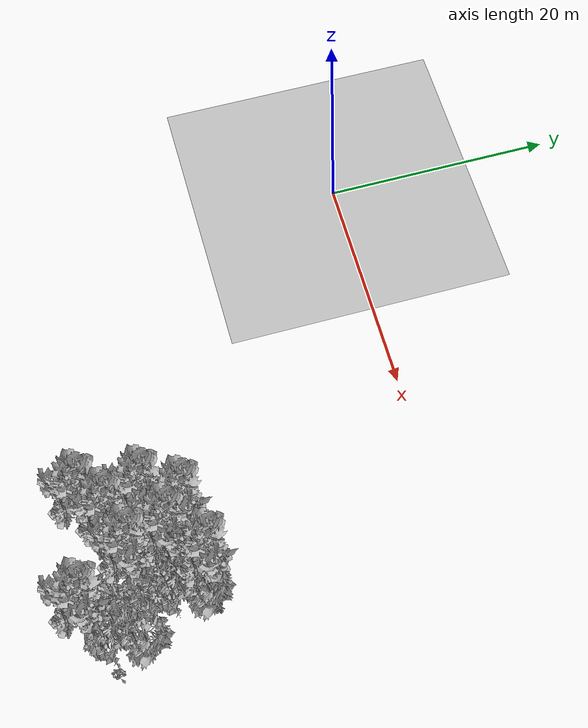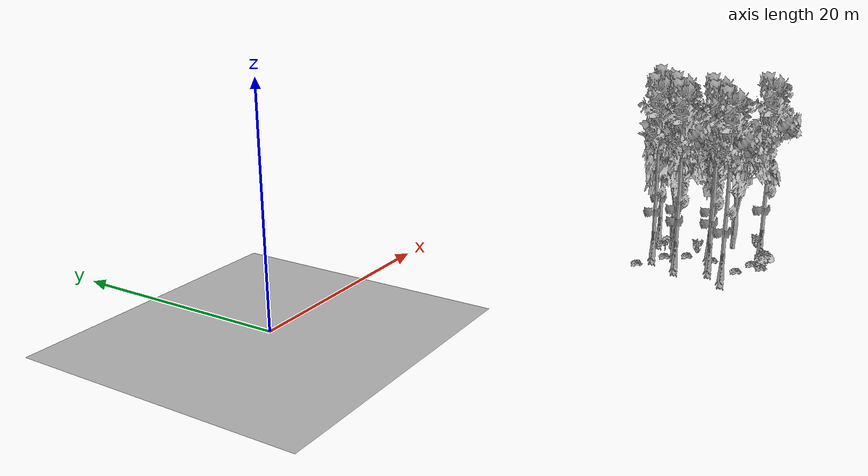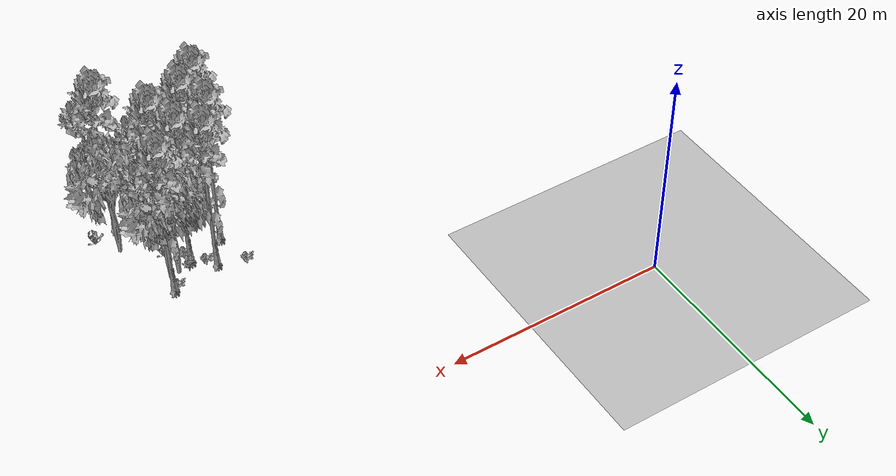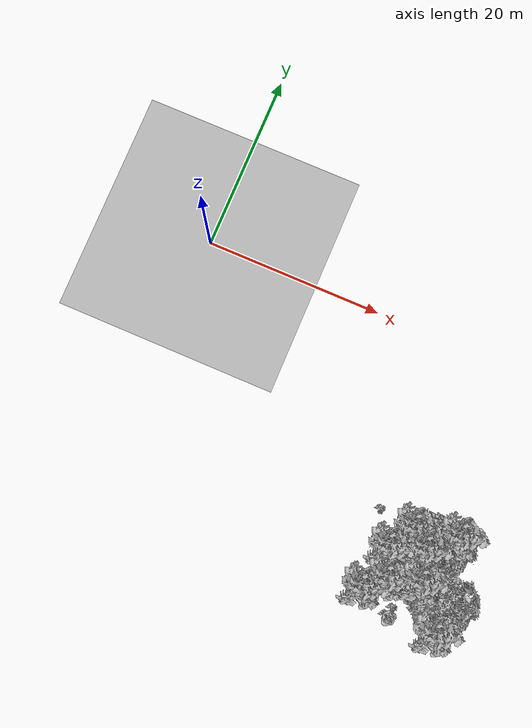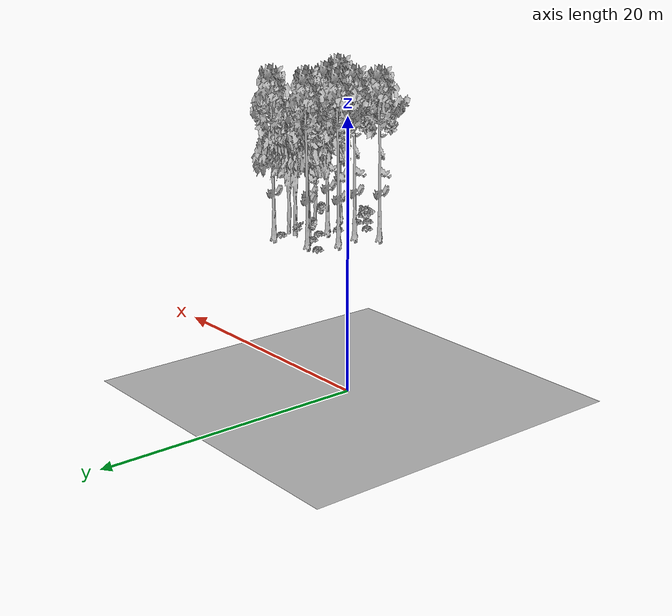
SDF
<sdf version="1.7">
 <world name="default">
  <model name="ground_plane">
   <static>1</static>
   <link name="link">
    <collision name="collision">
     <pose>-50 0 0 0 -0 0</pose>
     <geometry><plane><normal>0 0 1</normal><size>80 80</size></plane></geometry>
     <surface><contact><ode><min_depth>0.01</min_depth><max_vel>0</max_vel></ode></contact></surface>
    </collision>
    <visual name="grass">
     <cast_shadows>0</cast_shadows>
     <geometry>
      <mesh>
       <scale>0.46714285714285714 0.46714285714285714 0.1</scale>
       <uri>file://grass_plane/meshes/grass_plane.dae</uri>
      </mesh>
     </geometry>
    </visual>
   </link>
  </model>
  <model name="Tree 13">
   <static>1</static>
   <pose>33.340444704431576 -24.69356420575668 0 1.57079 -0 0</pose>
   <link name="link">
    <collision name="collision">
     <geometry><mesh><scale>3.5 5 3.5</scale><uri>model://tree_9/meshes/tree_9.obj</uri></mesh></geometry>
    </collision>
    <visual name="visual">
     <geometry><mesh><scale>3.5 5 3.5</scale><uri>model://tree_9/meshes/tree_9.obj</uri></mesh></geometry>
    </visual>
   </link>
  </model>
  <model name="Tree 33">
   <static>1</static>
   <pose>34.66525819187517 -20.876958603733257 0 1.57079 -0 0</pose>
   <link name="link">
    <collision name="collision">
     <geometry><mesh><scale>3.5 5 3.5</scale><uri>model://tree_2/meshes/tree_2.obj</uri></mesh></geometry>
    </collision>
    <visual name="visual">
     <geometry><mesh><scale>3.5 5 3.5</scale><uri>model://tree_2/meshes/tree_2.obj</uri></mesh></geometry>
    </visual>
   </link>
  </model>
  <model name="Tree 55">
   <static>1</static>
   <pose>36.969860594500034 -26.00975342704274 0 1.57079 -0 0</pose>
   <link name="link">
    <collision name="collision">
     <geometry><mesh><scale>3.5 5 3.5</scale><uri>model://tree_2/meshes/tree_2.obj</uri></mesh></geometry>
    </collision>
    <visual name="visual">
     <geometry><mesh><scale>3.5 5 3.5</scale><uri>model://tree_2/meshes/tree_2.obj</uri></mesh></geometry>
    </visual>
   </link>
  </model>
  <model name="Tree 57">
   <static>1</static>
   <pose>30.167246986455908 -25.624725033380518 0 1.57079 -0 0</pose>
   <link name="link">
    <collision name="collision">
     <geometry><mesh><scale>3.5 5 3.5</scale><uri>model://tree_9/meshes/tree_9.obj</uri></mesh></geometry>
    </collision>
    <visual name="visual">
     <geometry><mesh><scale>3.5 5 3.5</scale><uri>model://tree_9/meshes/tree_9.obj</uri></mesh></geometry>
    </visual>
   </link>
  </model>
  <model name="Tree 85">
   <static>1</static>
   <pose>28.28114126325083 -27.27630908078939 0 1.57079 -0 0</pose>
   <link name="link">
    <collision name="collision">
     <geometry><mesh><scale>3.5 5 3.5</scale><uri>model://tree_9/meshes/tree_9.obj</uri></mesh></geometry>
    </collision>
    <visual name="visual">
     <geometry><mesh><scale>3.5 5 3.5</scale><uri>model://tree_9/meshes/tree_9.obj</uri></mesh></geometry>
    </visual>
   </link>
  </model>
  <model name="Tree 180">
   <static>1</static>
   <pose>33.844620150218944 -21.032069033627874 0 1.57079 -0 0</pose>
   <link name="link">
    <collision name="collision">
     <geometry><mesh><scale>3.5 5 3.5</scale><uri>model://tree_2/meshes/tree_2.obj</uri></mesh></geometry>
    </collision>
    <visual name="visual">
     <geometry><mesh><scale>3.5 5 3.5</scale><uri>model://tree_2/meshes/tree_2.obj</uri></mesh></geometry>
    </visual>
   </link>
  </model>
  <model name="Tree 192">
   <static>1</static>
   <pose>30.806735204485435 -20.18126910378789 0 1.57079 -0 0</pose>
   <link name="link">
    <collision name="collision">
     <geometry><mesh><scale>3.5 5 3.5</scale><uri>model://tree_9/meshes/tree_9.obj</uri></mesh></geometry>
    </collision>
    <visual name="visual">
     <geometry><mesh><scale>3.5 5 3.5</scale><uri>model://tree_9/meshes/tree_9.obj</uri></mesh></geometry>
    </visual>
   </link>
  </model>
  <model name="Tree 239">
   <static>1</static>
   <pose>35.174450190734646 -19.324433031003075 0 1.57079 -0 0</pose>
   <link name="link">
    <collision name="collision">
     <geometry><mesh><scale>3.5 5 3.5</scale><uri>model://tree_9/meshes/tree_9.obj</uri></mesh></geometry>
    </collision>
    <visual name="visual">
     <geometry><mesh><scale>3.5 5 3.5</scale><uri>model://tree_9/meshes/tree_9.obj</uri></mesh></geometry>
    </visual>
   </link>
  </model>
  <model name="Tree 307">
   <static>1</static>
   <pose>32.530085398773394 -21.671693167288595 0 1.57079 -0 0</pose>
   <link name="link">
    <collision name="collision">
     <geometry><mesh><scale>3.5 5 3.5</scale><uri>model://tree_9/meshes/tree_9.obj</uri></mesh></geometry>
    </collision>
    <visual name="visual">
     <geometry><mesh><scale>3.5 5 3.5</scale><uri>model://tree_9/meshes/tree_9.obj</uri></mesh></geometry>
    </visual>
   </link>
  </model>
  <model name="Tree 466">
   <static>1</static>
   <pose>36.29859266114494 -28.719326138940815 0 1.57079 -0 0</pose>
   <link name="link">
    <collision name="collision">
     <geometry><mesh><scale>3.5 5 3.5</scale><uri>model://tree_9/meshes/tree_9.obj</uri></mesh></geometry>
    </collision>
    <visual name="visual">
     <geometry><mesh><scale>3.5 5 3.5</scale><uri>model://tree_9/meshes/tree_9.obj</uri></mesh></geometry>
    </visual>
   </link>
  </model>
  <model name="Tree 473">
   <static>1</static>
   <pose>29.219773893746705 -22.79793519428089 0 1.57079 -0 0</pose>
   <link name="link">
    <collision name="collision">
     <geometry><mesh><scale>3.5 5 3.5</scale><uri>model://tree_9/meshes/tree_9.obj</uri></mesh></geometry>
    </collision>
    <visual name="visual">
     <geometry><mesh><scale>3.5 5 3.5</scale><uri>model://tree_9/meshes/tree_9.obj</uri></mesh></geometry>
    </visual>
   </link>
  </model>
  <model name="Bush 40">
   <static>1</static>
   <pose>34.17904289932801 -23.454648295382654 0 1.57079 -0 0</pose>
   <link name="link">
    <collision name="collision">
     <geometry><mesh><scale>2 2 2</scale><uri>model://bush_4/meshes/bush_4.obj</uri></mesh></geometry>
     <surface><contact><collide_without_contact>false</collide_without_contact></contact></surface>
    </collision>
    <visual name="visual">
     <geometry><mesh><scale>2 2 2</scale><uri>model://bush_4/meshes/bush_4.obj</uri></mesh></geometry>
    </visual>
   </link>
  </model>
  <model name="Bush 89">
   <static>1</static>
   <pose>33.14748792372616 -20.644350803026104 0 1.57079 -0 0</pose>
   <link name="link">
    <collision name="collision">
     <geometry><mesh><scale>2 2 2</scale><uri>model://bush_5/meshes/bush_5.obj</uri></mesh></geometry>
     <surface><contact><collide_without_contact>false</collide_without_contact></contact></surface>
    </collision>
    <visual name="visual">
     <geometry><mesh><scale>2 2 2</scale><uri>model://bush_5/meshes/bush_5.obj</uri></mesh></geometry>
    </visual>
   </link>
  </model>
  <model name="Bush 103">
   <static>1</static>
   <pose>31.265186470237808 -21.208164231848208 0 1.57079 -0 0</pose>
   <link name="link">
    <collision name="collision">
     <geometry><mesh><scale>2 2 2</scale><uri>model://bush_2/meshes/bush_2.obj</uri></mesh></geometry>
     <surface><contact><collide_without_contact>false</collide_without_contact></contact></surface>
    </collision>
    <visual name="visual">
     <geometry><mesh><scale>2 2 2</scale><uri>model://bush_2/meshes/bush_2.obj</uri></mesh></geometry>
    </visual>
   </link>
  </model>
  <model name="Bush 216">
   <static>1</static>
   <pose>34.53472185013848 -19.819426429269996 0 1.57079 -0 0</pose>
   <link name="link">
    <collision name="collision">
     <geometry><mesh><scale>2 2 2</scale><uri>model://bush_2/meshes/bush_2.obj</uri></mesh></geometry>
     <surface><contact><collide_without_contact>false</collide_without_contact></contact></surface>
    </collision>
    <visual name="visual">
     <geometry><mesh><scale>2 2 2</scale><uri>model://bush_2/meshes/bush_2.obj</uri></mesh></geometry>
    </visual>
   </link>
  </model>
  <model name="Bush 232">
   <static>1</static>
   <pose>28.285522800691524 -19.559323452840573 0 1.57079 -0 0</pose>
   <link name="link">
    <collision name="collision">
     <geometry><mesh><scale>2 2 2</scale><uri>model://bush_2/meshes/bush_2.obj</uri></mesh></geometry>
     <surface><contact><collide_without_contact>false</collide_without_contact></contact></surface>
    </collision>
    <visual name="visual">
     <geometry><mesh><scale>2 2 2</scale><uri>model://bush_2/meshes/bush_2.obj</uri></mesh></geometry>
    </visual>
   </link>
  </model>
  <model name="Bush 293">
   <static>1</static>
   <pose>33.35738247798291 -28.698371734050756 0 1.57079 -0 0</pose>
   <link name="link">
    <collision name="collision">
     <geometry><mesh><scale>2 2 2</scale><uri>model://bush_2/meshes/bush_2.obj</uri></mesh></geometry>
     <surface><contact><collide_without_contact>false</collide_without_contact></contact></surface>
    </collision>
    <visual name="visual">
     <geometry><mesh><scale>2 2 2</scale><uri>model://bush_2/meshes/bush_2.obj</uri></mesh></geometry>
    </visual>
   </link>
  </model>
  <model name="Bush 379">
   <static>1</static>
   <pose>38.48520814021572 -27.90067700028616 0 1.57079 -0 0</pose>
   <link name="link">
    <collision name="collision">
     <geometry><mesh><scale>2 2 2</scale><uri>model://bush_4/meshes/bush_4.obj</uri></mesh></geometry>
     <surface><contact><collide_without_contact>false</collide_without_contact></contact></surface>
    </collision>
    <visual name="visual">
     <geometry><mesh><scale>2 2 2</scale><uri>model://bush_4/meshes/bush_4.obj</uri></mesh></geometry>
    </visual>
   </link>
  </model>
  <model name="Bush 458">
   <static>1</static>
   <pose>32.46865438157738 -22.96889783745722 0 1.57079 -0 0</pose>
   <link name="link">
    <collision name="collision">
     <geometry><mesh><scale>2 2 2</scale><uri>model://bush_2/meshes/bush_2.obj</uri></mesh></geometry>
     <surface><contact><collide_without_contact>false</collide_without_contact></contact></surface>
    </collision>
    <visual name="visual">
     <geometry><mesh><scale>2 2 2</scale><uri>model://bush_2/meshes/bush_2.obj</uri></mesh></geometry>
    </visual>
   </link>
  </model>
  <model name="Bush 469">
   <static>1</static>
   <pose>32.39180835809566 -25.380073343328498 0 1.57079 -0 0</pose>
   <link name="link">
    <collision name="collision">
     <geometry><mesh><scale>2 2 2</scale><uri>model://bush_2/meshes/bush_2.obj</uri></mesh></geometry>
     <surface><contact><collide_without_contact>false</collide_without_contact></contact></surface>
    </collision>
    <visual name="visual">
     <geometry><mesh><scale>2 2 2</scale><uri>model://bush_2/meshes/bush_2.obj</uri></mesh></geometry>
    </visual>
   </link>
  </model>
  <model name="Bush 516">
   <static>1</static>
   <pose>30.877048630333306 -27.92144595065592 0 1.57079 -0 0</pose>
   <link name="link">
    <collision name="collision">
     <geometry><mesh><scale>2 2 2</scale><uri>model://bush_2/meshes/bush_2.obj</uri></mesh></geometry>
     <surface><contact><collide_without_contact>false</collide_without_contact></contact></surface>
    </collision>
    <visual name="visual">
     <geometry><mesh><scale>2 2 2</scale><uri>model://bush_2/meshes/bush_2.obj</uri></mesh></geometry>
    </visual>
   </link>
  </model>
  <model name="Bush 611">
   <static>1</static>
   <pose>32.86569090462213 -29.6783510529265 0 1.57079 -0 0</pose>
   <link name="link">
    <collision name="collision">
     <geometry><mesh><scale>2 2 2</scale><uri>model://bush_2/meshes/bush_2.obj</uri></mesh></geometry>
     <surface><contact><collide_without_contact>false</collide_without_contact></contact></surface>
    </collision>
    <visual name="visual">
     <geometry><mesh><scale>2 2 2</scale><uri>model://bush_2/meshes/bush_2.obj</uri></mesh></geometry>
    </visual>
   </link>
  </model>
  <model name="Bush 615">
   <static>1</static>
   <pose>33.28431375640177 -29.889142208224804 0 1.57079 -0 0</pose>
   <link name="link">
    <collision name="collision">
     <geometry><mesh><scale>2 2 2</scale><uri>model://bush_1/meshes/bush_1.obj</uri></mesh></geometry>
     <surface><contact><collide_without_contact>false</collide_without_contact></contact></surface>
    </collision>
    <visual name="visual">
     <geometry><mesh><scale>2 2 2</scale><uri>model://bush_1/meshes/bush_1.obj</uri></mesh></geometry>
    </visual>
   </link>
  </model>
 </world>
</sdf>
